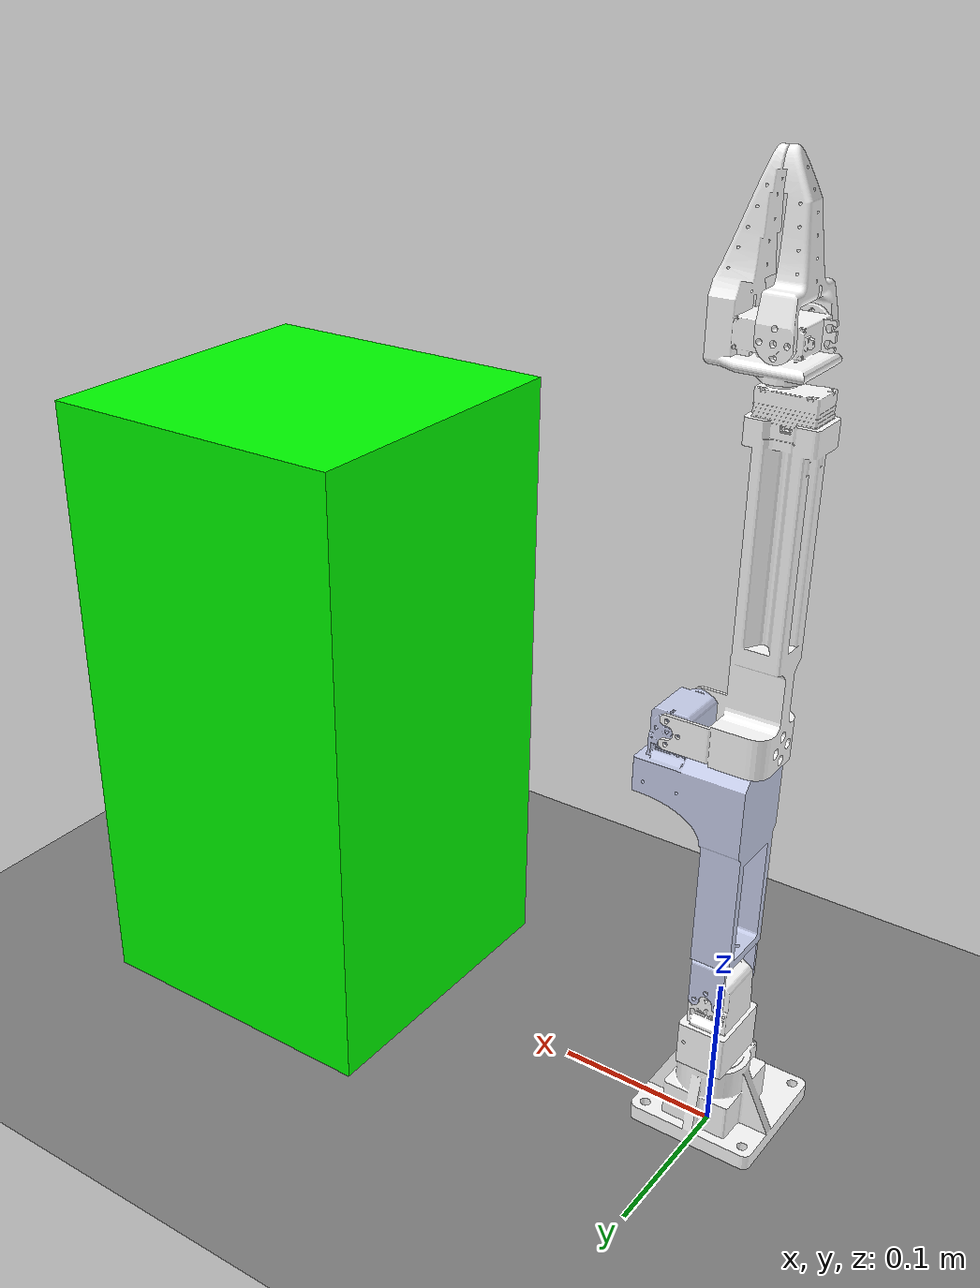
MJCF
<mujoco model="flying_hand_follower">
    <compiler angle="radian" meshdir="meshes/" />
    <size njmax="500" nconmax="100" />
    <asset>
        <mesh name="base_link" file="base_link.STL" />
        <mesh name="link_1" file="link_1.STL" />
        <mesh name="link_2" file="link_2.STL" />
        <mesh name="link_3" file="link_3.STL" />
        <mesh name="link_4" file="link_4.STL" />
        <mesh name="link_5" file="link_5.STL" />
    </asset>
    <worldbody>
      <geom name="floor" pos="0 0 0" size="0 0 0.1" type="plane"/>
        <light directional="true" diffuse=".2 .2 .2" specular="0 0 0" pos="0 0 5" dir="0 0 -1"/>
        <light mode="targetbodycom" directional="false" diffuse=".8 .8 .8" specular="0.3 0.3 0.3" pos="0 0 4.0" dir="0 0 -1"/>
        <geom type="mesh" contype="0" conaffinity="0" group="1" rgba="1 1 1 1" mesh="base_link" />
        <body name="link_1" pos="0 0 0.0528" quat="0.707105 0 0 -0.707108">
            <inertial pos="0.00156867 0 0.0346018" quat="0.70658 0.0272765 0.0272765 0.70658" mass="0.08581" diaginertia="3.717e-05 3.01296e-05 1.84204e-05" />
            <joint name="joint_1" pos="0 0 0" axis="0 0 1" limited="true" range="-2.8973 2.8973" />
            <geom type="mesh" contype="1" conaffinity="1" group="1" rgba="1 1 1 1" mesh="link_1" />
            <body name="link_2" pos="0 0 0.04861" quat="0.499998 0.5 -0.500002 -0.5">
                <inertial pos="-0.0260946 0.13097 -0.00115046" quat="0.353085 0.517901 -0.473761 0.618595" mass="0.11524" diaginertia="0.000254471 0.000252714 4.03944e-05" />
                <joint name="joint_2" pos="0 0 0" axis="0 0 1" limited="true" range="-1.7628 1.7628" />
                <geom type="mesh" contype="1" conaffinity="1" group="1" rgba="0.79216 0.81961 0.93333 1" mesh="link_2" />
                <body name="link_3" pos="-0.03814 0.164 -0.0002">
                    <inertial pos="0.0395021 0.10829 -0.00063991" quat="0.659737 0.659675 -0.254462 -0.254607" mass="0.0848" diaginertia="0.0010994 0.0010994 0.0010994" />
                    <joint name="joint_3" pos="0 0 0" axis="0 0 1" limited="true" range="0 3.5186" />
                    <geom type="mesh" contype="1" conaffinity="1" group="1" rgba="1 1 1 1" mesh="link_3" />
                    <body name="link_4" pos="0.03582 0.1935 -0.00077" quat="-2.59734e-06 -2.59735e-06 -0.707108 -0.707105">
                        <inertial pos="0.00571584 -0.00257461 0.0252514" quat="0.611019 0.242988 0.272825 0.702267" mass="0.05367" diaginertia="2.25018e-05 1.88986e-05 1.27597e-05" />
                        <joint name="joint_4" pos="0 0 0" axis="0 0 -1" limited="true" range="-2.8973 2.8973" />
                        <geom type="mesh" contype="1" conaffinity="1" group="1" rgba="1 1 1 1" mesh="link_4" />
                        <body name="link_5" pos="-0.0044 -0.017722 0.02267" quat="0.707105 0.707108 0 0">
                            <inertial pos="0.00154814 0.0301579 -0.0171895" quat="0.715902 0.697379 -0.0219936 -0.0257554" mass="0.00926" diaginertia="5.18693e-06 4.12182e-06 1.47125e-06" />
                            <joint name="joint_5" pos="0 0 0" axis="0 0 -1" limited="true" range="-1.7453 0" />
                            <geom type="mesh" contype="1" conaffinity="1" group="1" rgba="1 1 1 1" mesh="link_5" />
                        </body>
                    </body>
                </body>
            </body>
        </body>
        <body name="cube1" pos="0.3 0 0.2">
            <joint type="free"/>
            <geom name="cube_geom" type="box" contype="1" conaffinity="1" size="0.1 0.1 0.2" mass="10" rgba="0 1 0 1"/>
        </body>
    </worldbody>
    <actuator>
        <position name="motor1" joint="joint_1" kp="50" dampratio="1" />
        <position name="motor2" joint="joint_2" kp="50" dampratio="1" />
        <position name="motor3" joint="joint_3" kp="50" dampratio="1" />
        <position name="motor4" joint="joint_4" kp="1" dampratio="1" />
        <position name="motor5" joint="joint_5" kp="1" dampratio="1" />
    </actuator>
</mujoco>
